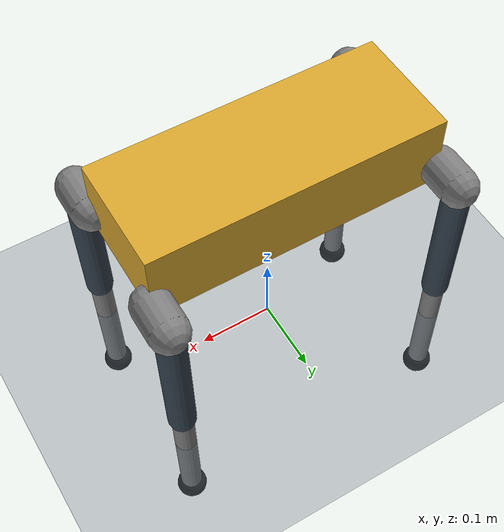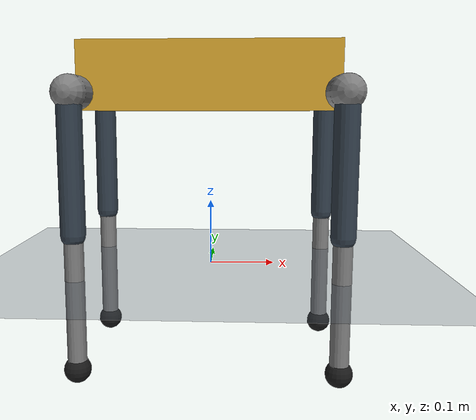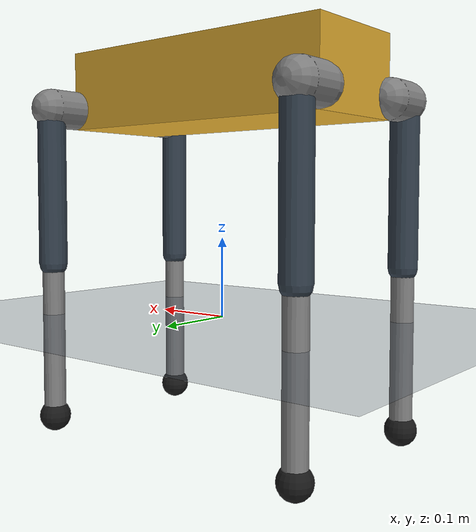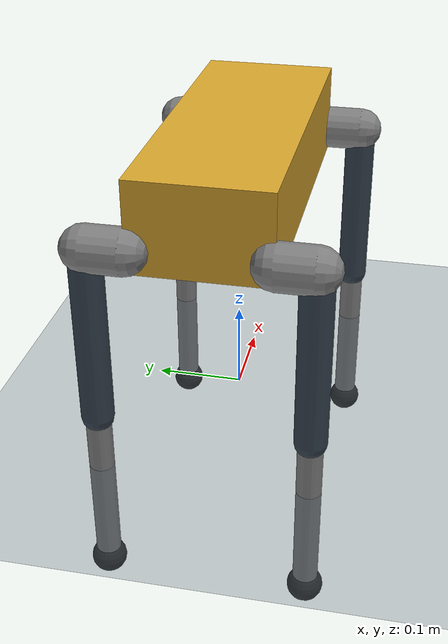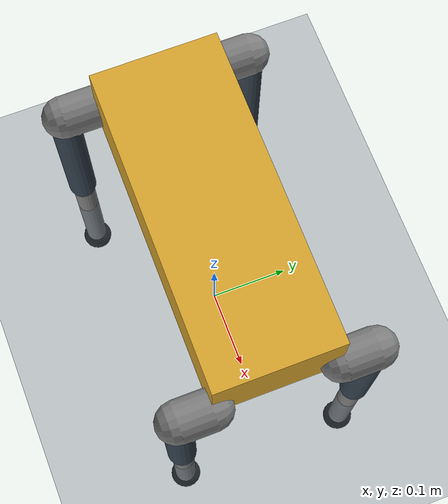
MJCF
<mujoco model="Pup flat (position actuators, MJX-tuned)">
  <include file="pup.xml"/>

  <option timestep="0.004" integrator="implicitfast"
          iterations="1" ls_iterations="5" cone="pyramidal"/>

  <visual>
    <global offwidth="960" offheight="720"/>
  </visual>

  <worldbody>
    <light pos="0 -1 3"/>
    <geom name="floor" type="plane" size="0 0 0.1"
          contype="1" conaffinity="2" rgba="0.3 0.35 0.4 1"/>
  </worldbody>

  <actuator>
    <position joint="FL_hip_abd"  kp="25" kv="0.5" forcerange="-20 20"/>
    <position joint="FL_hip_flex" kp="25" kv="0.5" forcerange="-20 20"/>
    <position joint="FL_knee"     kp="25" kv="0.5" forcerange="-20 20"/>
    <position joint="FR_hip_abd"  kp="25" kv="0.5" forcerange="-20 20"/>
    <position joint="FR_hip_flex" kp="25" kv="0.5" forcerange="-20 20"/>
    <position joint="FR_knee"     kp="25" kv="0.5" forcerange="-20 20"/>
    <position joint="RL_hip_abd"  kp="25" kv="0.5" forcerange="-20 20"/>
    <position joint="RL_hip_flex" kp="25" kv="0.5" forcerange="-20 20"/>
    <position joint="RL_knee"     kp="25" kv="0.5" forcerange="-20 20"/>
    <position joint="RR_hip_abd"  kp="25" kv="0.5" forcerange="-20 20"/>
    <position joint="RR_hip_flex" kp="25" kv="0.5" forcerange="-20 20"/>
    <position joint="RR_knee"     kp="25" kv="0.5" forcerange="-20 20"/>
  </actuator>

  <keyframe>
    <!-- Here ctrl is a joint TARGET, so it equals the keyframe's joint angles:
         reset to a keyframe and the robot is already commanded to hold it. -->
    <key name="home"
         qpos="0 0 0.29 1 0 0 0  0 0.9 -1.8  0 0.9 -1.8  0 0.9 -1.8  0 0.9 -1.8"
         ctrl="0 0.9 -1.8  0 0.9 -1.8  0 0.9 -1.8  0 0.9 -1.8"/>
    <key name="crouch"
         qpos="0 0 0.187054 1 0 0 0  0 1.4 -2.4  0 1.4 -2.4  0 1.4 -2.4  0 1.4 -2.4"
         ctrl="0 1.4 -2.4  0 1.4 -2.4  0 1.4 -2.4  0 1.4 -2.4"/>
  </keyframe>
</mujoco>

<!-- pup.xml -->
<mujoco model="Pup">
  <compiler angle="radian"/>

  <default>
    <joint damping="1.0" armature="0.03"/>
    <geom contype="0" conaffinity="0" friction="0.8 0.005 0.0001" solimp="0.9 0.95 0.023"/>
    <default class="thigh">
      <geom type="capsule" fromto="0 0 0 0 0 -0.2" size="0.018" mass="0.6" rgba="0.2 0.25 0.3 1"/>
    </default>
    <default class="shank">
      <geom type="capsule" fromto="0 0 0 0 0 -0.2" size="0.014" mass="0.4"/>
    </default>
    <default class="foot">
      <geom type="sphere" pos="0 0 -0.2" size="0.02" mass="0.04"
            contype="2" conaffinity="1" rgba="0.1 0.1 0.1 1"/>
    </default>
  </default>

  <worldbody>
    <body name="trunk" pos="0 0 0.29">
      <freejoint name="root"/>
      <geom name="trunk_geom" type="box" size="0.19 0.075 0.05" mass="5.5" rgba="0.85 0.65 0.18 1"/>
      <site name="imu" size="0.005"/>

      <!-- Front left -->
      <body name="FL_hip" pos="0.19 0.075 -0.025">
        <joint name="FL_hip_abd" axis="1 0 0" range="-0.8 0.8"/>
        <geom type="capsule" fromto="0 0 0 0 0.04 0" size="0.025" mass="0.5"/>
        <body name="FL_thigh" pos="0 0.04 0">
          <joint name="FL_hip_flex" axis="0 1 0" range="-1 2.5"/>
          <geom class="thigh"/>
          <body name="FL_shank" pos="0 0 -0.2">
            <joint name="FL_knee" axis="0 1 0" range="-2.6 -0.9"/>
            <geom class="shank"/>
            <geom name="FL_foot" class="foot"/>
            <site name="FL_foot_site" pos="0 0 -0.2" size="0.005"/>
          </body>
        </body>
      </body>

      <!-- Front right -->
      <body name="FR_hip" pos="0.19 -0.075 -0.025">
        <joint name="FR_hip_abd" axis="1 0 0" range="-0.8 0.8"/>
        <geom type="capsule" fromto="0 0 0 0 -0.04 0" size="0.025" mass="0.5"/>
        <body name="FR_thigh" pos="0 -0.04 0">
          <joint name="FR_hip_flex" axis="0 1 0" range="-1 2.5"/>
          <geom class="thigh"/>
          <body name="FR_shank" pos="0 0 -0.2">
            <joint name="FR_knee" axis="0 1 0" range="-2.6 -0.9"/>
            <geom class="shank"/>
            <geom name="FR_foot" class="foot"/>
            <site name="FR_foot_site" pos="0 0 -0.2" size="0.005"/>
          </body>
        </body>
      </body>

      <!-- Rear left -->
      <body name="RL_hip" pos="-0.19 0.075 -0.025">
        <joint name="RL_hip_abd" axis="1 0 0" range="-0.8 0.8"/>
        <geom type="capsule" fromto="0 0 0 0 0.04 0" size="0.025" mass="0.5"/>
        <body name="RL_thigh" pos="0 0.04 0">
          <joint name="RL_hip_flex" axis="0 1 0" range="-1 2.5"/>
          <geom class="thigh"/>
          <body name="RL_shank" pos="0 0 -0.2">
            <joint name="RL_knee" axis="0 1 0" range="-2.6 -0.9"/>
            <geom class="shank"/>
            <geom name="RL_foot" class="foot"/>
            <site name="RL_foot_site" pos="0 0 -0.2" size="0.005"/>
          </body>
        </body>
      </body>

      <!-- Rear right -->
      <body name="RR_hip" pos="-0.19 -0.075 -0.025">
        <joint name="RR_hip_abd" axis="1 0 0" range="-0.8 0.8"/>
        <geom type="capsule" fromto="0 0 0 0 -0.04 0" size="0.025" mass="0.5"/>
        <body name="RR_thigh" pos="0 -0.04 0">
          <joint name="RR_hip_flex" axis="0 1 0" range="-1 2.5"/>
          <geom class="thigh"/>
          <body name="RR_shank" pos="0 0 -0.2">
            <joint name="RR_knee" axis="0 1 0" range="-2.6 -0.9"/>
            <geom class="shank"/>
            <geom name="RR_foot" class="foot"/>
            <site name="RR_foot_site" pos="0 0 -0.2" size="0.005"/>
          </body>
        </body>
      </body>
    </body>
  </worldbody>

  <sensor>
    <!-- Things a real robot can measure. These are allowed in the observation. -->
    <gyro name="gyro" site="imu"/>
    <accelerometer name="accelerometer" site="imu"/>
    <framequat name="orientation" objtype="body" objname="trunk"/>

    <!-- PRIVILEGED: ground truth from the simulator. Rewards and evaluation
         only -- putting these in the observation trains a policy that cannot
         be deployed. -->
    <framelinvel name="global_linvel" objtype="body" objname="trunk"/>
    <frameangvel name="global_angvel" objtype="body" objname="trunk"/>
    <framezaxis name="upvector" objtype="body" objname="trunk"/>

    <contact name="FL_foot_contact" geom1="FL_foot" geom2="floor" reduce="mindist" num="1" data="found"/>
    <contact name="FR_foot_contact" geom1="FR_foot" geom2="floor" reduce="mindist" num="1" data="found"/>
    <contact name="RL_foot_contact" geom1="RL_foot" geom2="floor" reduce="mindist" num="1" data="found"/>
    <contact name="RR_foot_contact" geom1="RR_foot" geom2="floor" reduce="mindist" num="1" data="found"/>
  </sensor>
</mujoco>
